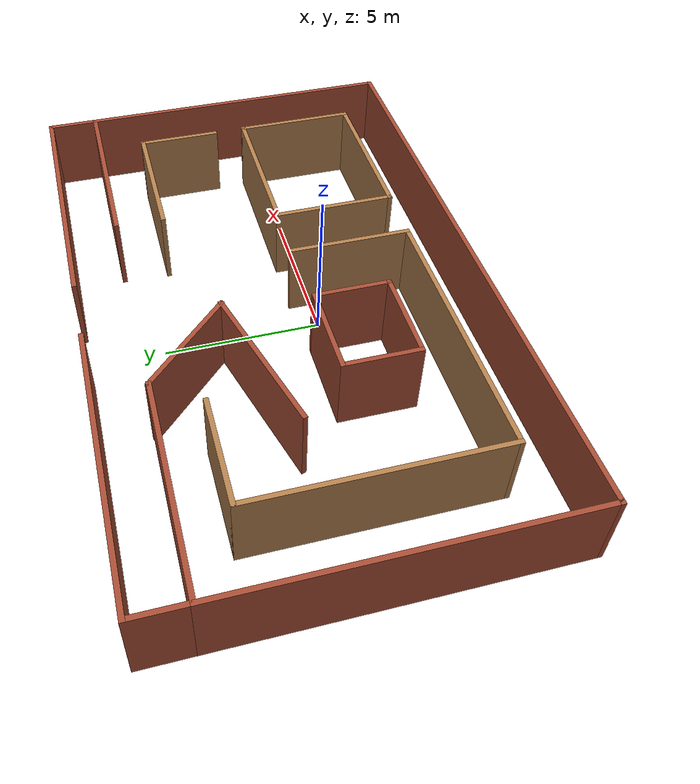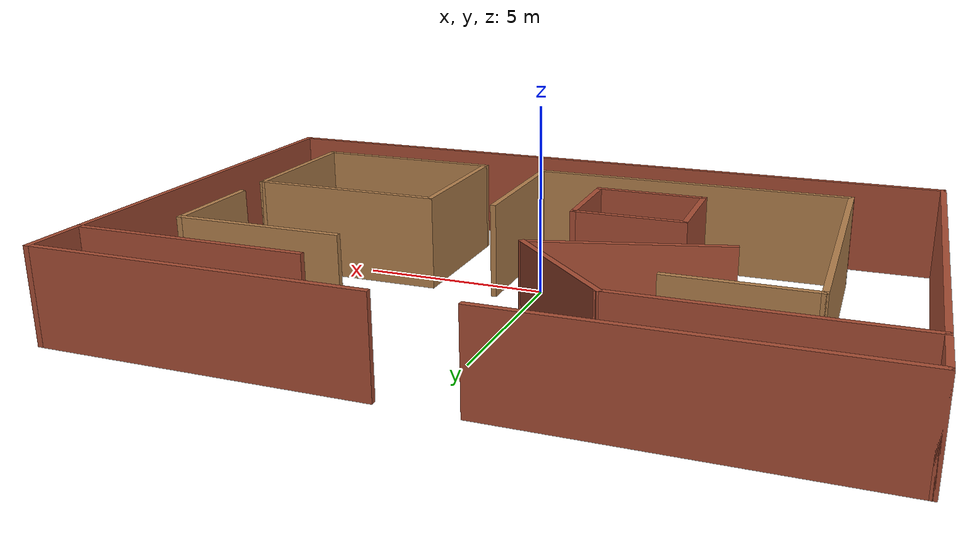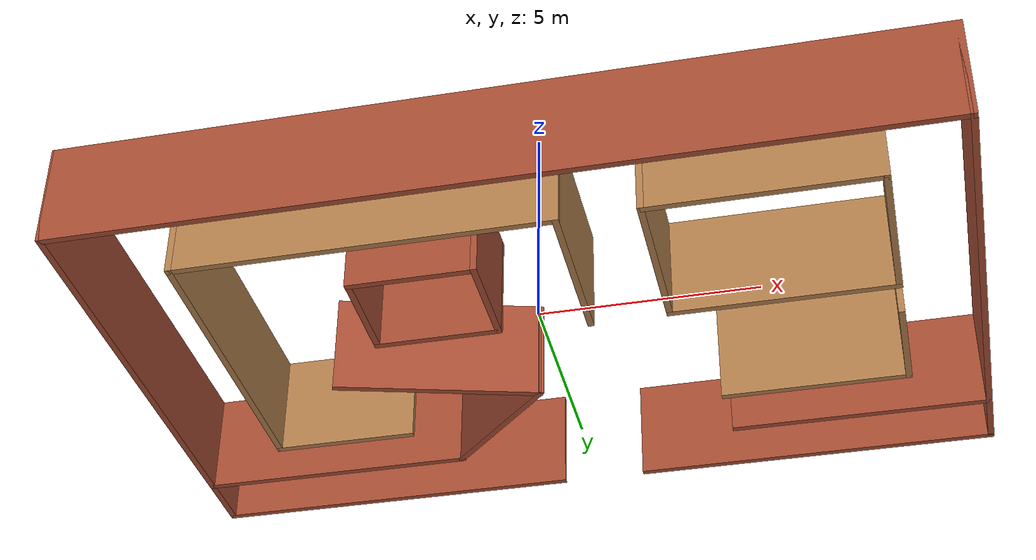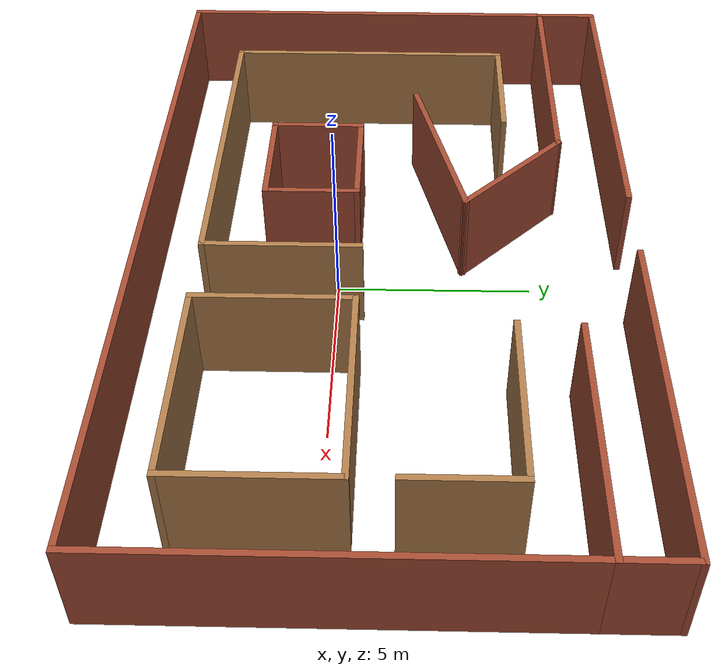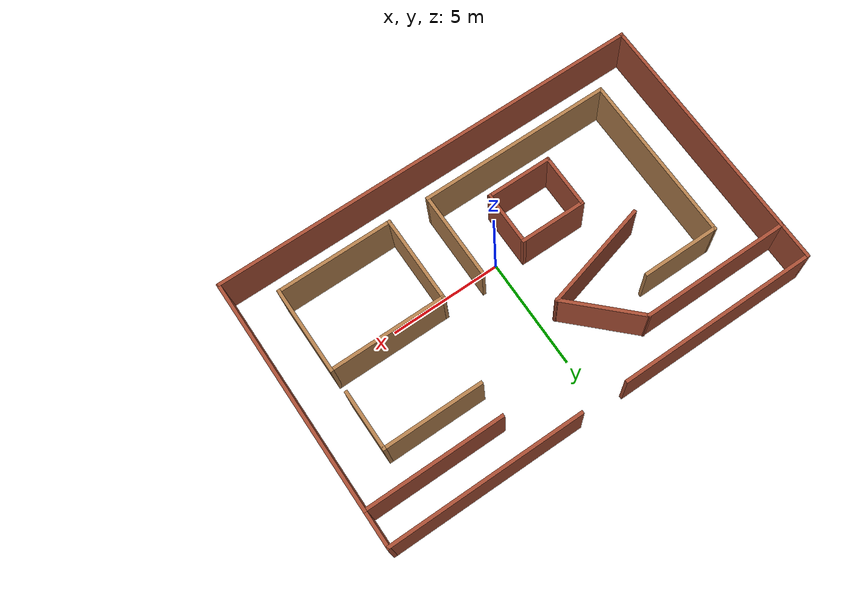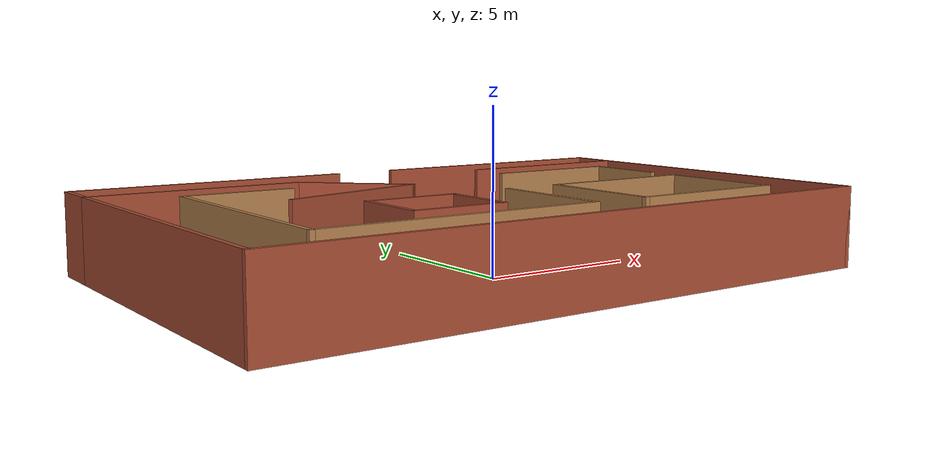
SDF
<?xml version='1.0'?>
<sdf version='1.7'>
  <model name='my_world_1'>
    <pose>-0.020782 1.29348 0 0 -0 0</pose>
    <link name='Wall_10'>
      <collision name='Wall_10_Collision'>
        <geometry>
          <box>
            <size>10.75 0.15 2.5</size>
          </box>
        </geometry>
        <pose>0 0 1.25 0 -0 0</pose>
      </collision>
      <visual name='Wall_10_Visual'>
        <pose>0 0 1.25 0 -0 0</pose>
        <geometry>
          <box>
            <size>10.75 0.15 2.5</size>
          </box>
        </geometry>
        <material>
          <script>
            <uri>file://media/materials/scripts/gazebo.material</uri>
            <name>Gazebo/Bricks</name>
          </script>
          <ambient>1 1 1 1</ambient>
        </material>
        <meta>
          <layer>0</layer>
        </meta>
      </visual>
      <pose>9.8 -0.8 0 0 -0 1.5708</pose>
    </link>
    <link name='Wall_12'>
      <collision name='Wall_12_Collision'>
        <geometry>
          <box>
            <size>6.75 0.15 2.5</size>
          </box>
        </geometry>
        <pose>0 0 1.25 0 -0 0</pose>
      </collision>
      <visual name='Wall_12_Visual'>
        <pose>0 0 1.25 0 -0 0</pose>
        <geometry>
          <box>
            <size>6.75 0.15 2.5</size>
          </box>
        </geometry>
        <material>
          <script>
            <uri>file://media/materials/scripts/gazebo.material</uri>
            <name>Gazebo/Bricks</name>
          </script>
          <ambient>1 1 1 1</ambient>
        </material>
        <meta>
          <layer>0</layer>
        </meta>
      </visual>
      <pose>-6.5 4.5 0 0 -0 0</pose>
    </link>
    <link name='Wall_14'>
      <collision name='Wall_14_Collision'>
        <geometry>
          <box>
            <size>6.25 0.15 2.5</size>
          </box>
        </geometry>
        <pose>0 0 1.25 0 -0 0</pose>
      </collision>
      <visual name='Wall_14_Visual'>
        <pose>0 0 1.25 0 -0 0</pose>
        <geometry>
          <box>
            <size>6.25 0.15 2.5</size>
          </box>
        </geometry>
        <material>
          <script>
            <uri>file://media/materials/scripts/gazebo.material</uri>
            <name>Gazebo/Bricks</name>
          </script>
          <ambient>1 1 1 1</ambient>
        </material>
        <meta>
          <layer>0</layer>
        </meta>
      </visual>
      <pose>6.75 4.5 0 0 -0 3.14159</pose>
    </link>
    <link name='Wall_16'>
      <collision name='Wall_16_Collision'>
        <geometry>
          <box>
            <size>3.75 0.15 2.5</size>
          </box>
        </geometry>
        <pose>0 0 1.25 0 -0 0</pose>
      </collision>
      <visual name='Wall_16_Visual'>
        <pose>0 0 1.25 0 -0 0</pose>
        <geometry>
          <box>
            <size>3.75 0.15 2.5</size>
          </box>
        </geometry>
        <material>
          <script>
            <uri>file://media/materials/scripts/gazebo.material</uri>
            <name>Gazebo/Bricks</name>
          </script>
          <ambient>1 1 1 1</ambient>
        </material>
        <meta>
          <layer>0</layer>
        </meta>
      </visual>
      <pose>-1.92721 3.22721 0 0 -0 -0.785398</pose>
    </link>
    <link name='Wall_17'>
      <collision name='Wall_17_Collision'>
        <geometry>
          <box>
            <size>5 0.15 2.5</size>
          </box>
        </geometry>
        <pose>0 0 1.25 0 -0 0</pose>
      </collision>
      <visual name='Wall_17_Visual'>
        <pose>0 0 1.25 0 -0 0</pose>
        <geometry>
          <box>
            <size>5 0.15 2.5</size>
          </box>
        </geometry>
        <material>
          <script>
            <uri>file://media/materials/scripts/gazebo.material</uri>
            <name>Gazebo/Bricks</name>
          </script>
          <ambient>1 1 1 1</ambient>
        </material>
        <meta>
          <layer>0</layer>
        </meta>
      </visual>
      <pose>-2.99679 1.32678 0 0 -0 -2.87979</pose>
    </link>
    <link name='Wall_19'>
      <collision name='Wall_19_Collision'>
        <geometry>
          <box>
            <size>4.5 0.15 2.5</size>
          </box>
        </geometry>
        <pose>0 0 1.25 0 -0 0</pose>
      </collision>
      <visual name='Wall_19_Visual'>
        <pose>0 0 1.25 0 -0 0</pose>
        <geometry>
          <box>
            <size>4.5 0.15 2.5</size>
          </box>
        </geometry>
        <material>
          <script>
            <uri>file://media/materials/scripts/gazebo.material</uri>
            <name>Gazebo/Wood</name>
          </script>
          <ambient>1 1 1 1</ambient>
        </material>
        <meta>
          <layer>0</layer>
        </meta>
      </visual>
      <pose>5.81402 2.99211 0 0 -0 0</pose>
    </link>
    <link name='Wall_20'>
      <collision name='Wall_20_Collision'>
        <geometry>
          <box>
            <size>2.75 0.15 2.5</size>
          </box>
        </geometry>
        <pose>0 0 1.25 0 -0 0</pose>
      </collision>
      <visual name='Wall_20_Visual'>
        <pose>0 0 1.25 0 -0 0</pose>
        <geometry>
          <box>
            <size>2.75 0.15 2.5</size>
          </box>
        </geometry>
        <material>
          <script>
            <uri>file://media/materials/scripts/gazebo.material</uri>
            <name>Gazebo/Wood</name>
          </script>
          <ambient>1 1 1 1</ambient>
        </material>
        <meta>
          <layer>0</layer>
        </meta>
      </visual>
      <pose>7.98902 1.69211 0 0 -0 -1.5708</pose>
    </link>
    <link name='Wall_22'>
      <collision name='Wall_22_Collision'>
        <geometry>
          <box>
            <size>4 0.15 2.5</size>
          </box>
        </geometry>
        <pose>0 0 1.25 0 -0 0</pose>
      </collision>
      <visual name='Wall_22_Visual'>
        <pose>0 0 1.25 0 -0 0</pose>
        <geometry>
          <box>
            <size>4 0.15 2.5</size>
          </box>
        </geometry>
        <material>
          <script>
            <uri>file://media/materials/scripts/gazebo.material</uri>
            <name>Gazebo/Wood</name>
          </script>
          <ambient>1 1 1 1</ambient>
        </material>
        <meta>
          <layer>0</layer>
        </meta>
      </visual>
      <pose>8.00145 -2.60372 0 0 -0 -1.5708</pose>
    </link>
    <link name='Wall_23'>
      <collision name='Wall_23_Collision'>
        <geometry>
          <box>
            <size>5.25 0.15 2.5</size>
          </box>
        </geometry>
        <pose>0 0 1.25 0 -0 0</pose>
      </collision>
      <visual name='Wall_23_Visual'>
        <pose>0 0 1.25 0 -0 0</pose>
        <geometry>
          <box>
            <size>5.25 0.15 2.5</size>
          </box>
        </geometry>
        <material>
          <script>
            <uri>file://media/materials/scripts/gazebo.material</uri>
            <name>Gazebo/Wood</name>
          </script>
          <ambient>1 1 1 1</ambient>
        </material>
        <meta>
          <layer>0</layer>
        </meta>
      </visual>
      <pose>5.45145 -4.52872 0 0 -0 3.14159</pose>
    </link>
    <link name='Wall_24'>
      <collision name='Wall_24_Collision'>
        <geometry>
          <box>
            <size>4 0.15 2.5</size>
          </box>
        </geometry>
        <pose>0 0 1.25 0 -0 0</pose>
      </collision>
      <visual name='Wall_24_Visual'>
        <pose>0 0 1.25 0 -0 0</pose>
        <geometry>
          <box>
            <size>4 0.15 2.5</size>
          </box>
        </geometry>
        <material>
          <script>
            <uri>file://media/materials/scripts/gazebo.material</uri>
            <name>Gazebo/Wood</name>
          </script>
          <ambient>1 1 1 1</ambient>
        </material>
        <meta>
          <layer>0</layer>
        </meta>
      </visual>
      <pose>2.90145 -2.60372 0 0 -0 1.5708</pose>
    </link>
    <link name='Wall_25'>
      <collision name='Wall_25_Collision'>
        <geometry>
          <box>
            <size>5.25 0.15 2.5</size>
          </box>
        </geometry>
        <pose>0 0 1.25 0 -0 0</pose>
      </collision>
      <visual name='Wall_25_Visual'>
        <pose>0 0 1.25 0 -0 0</pose>
        <geometry>
          <box>
            <size>5.25 0.15 2.5</size>
          </box>
        </geometry>
        <material>
          <script>
            <uri>file://media/materials/scripts/gazebo.material</uri>
            <name>Gazebo/Wood</name>
          </script>
          <ambient>1 1 1 1</ambient>
        </material>
        <meta>
          <layer>0</layer>
        </meta>
      </visual>
      <pose>5.45145 -0.67872 0 0 -0 0</pose>
    </link>
    <link name='Wall_27'>
      <collision name='Wall_27_Collision'>
        <geometry>
          <box>
            <size>4 0.15 2.5</size>
          </box>
        </geometry>
        <pose>0 0 1.25 0 -0 0</pose>
      </collision>
      <visual name='Wall_27_Visual'>
        <pose>0 0 1.25 0 -0 0</pose>
        <geometry>
          <box>
            <size>4 0.15 2.5</size>
          </box>
        </geometry>
        <material>
          <script>
            <uri>file://media/materials/scripts/gazebo.material</uri>
            <name>Gazebo/Wood</name>
          </script>
          <ambient>1 1 1 1</ambient>
        </material>
        <meta>
          <layer>0</layer>
        </meta>
      </visual>
      <pose>1.0854 -2.57712 0 0 -0 -1.5708</pose>
    </link>
    <link name='Wall_28'>
      <collision name='Wall_28_Collision'>
        <geometry>
          <box>
            <size>8.75 0.15 2.5</size>
          </box>
        </geometry>
        <pose>0 0 1.25 0 -0 0</pose>
      </collision>
      <visual name='Wall_28_Visual'>
        <pose>0 0 1.25 0 -0 0</pose>
        <geometry>
          <box>
            <size>8.75 0.15 2.5</size>
          </box>
        </geometry>
        <material>
          <script>
            <uri>file://media/materials/scripts/gazebo.material</uri>
            <name>Gazebo/Wood</name>
          </script>
          <ambient>1 1 1 1</ambient>
        </material>
        <meta>
          <layer>0</layer>
        </meta>
      </visual>
      <pose>-3.2146 -4.50212 0 0 -0 3.14159</pose>
    </link>
    <link name='Wall_29'>
      <collision name='Wall_29_Collision'>
        <geometry>
          <box>
            <size>7.75 0.15 2.5</size>
          </box>
        </geometry>
        <pose>0 0 1.25 0 -0 0</pose>
      </collision>
      <visual name='Wall_29_Visual'>
        <pose>0 0 1.25 0 -0 0</pose>
        <geometry>
          <box>
            <size>7.75 0.15 2.5</size>
          </box>
        </geometry>
        <material>
          <script>
            <uri>file://media/materials/scripts/gazebo.material</uri>
            <name>Gazebo/Wood</name>
          </script>
          <ambient>1 1 1 1</ambient>
        </material>
        <meta>
          <layer>0</layer>
        </meta>
      </visual>
      <pose>-7.5146 -0.70212 0 0 -0 1.5708</pose>
    </link>
    <link name='Wall_30'>
      <collision name='Wall_30_Collision'>
        <geometry>
          <box>
            <size>3.5 0.15 2.5</size>
          </box>
        </geometry>
        <pose>0 0 1.25 0 -0 0</pose>
      </collision>
      <visual name='Wall_30_Visual'>
        <pose>0 0 1.25 0 -0 0</pose>
        <geometry>
          <box>
            <size>3.5 0.15 2.5</size>
          </box>
        </geometry>
        <material>
          <script>
            <uri>file://media/materials/scripts/gazebo.material</uri>
            <name>Gazebo/Wood</name>
          </script>
          <ambient>1 1 1 1</ambient>
        </material>
        <meta>
          <layer>0</layer>
        </meta>
      </visual>
      <pose>-5.8396 3.09788 0 0 -0 0</pose>
    </link>
    <link name='Wall_32'>
      <collision name='Wall_32_Collision'>
        <geometry>
          <box>
            <size>2.5 0.15 2.5</size>
          </box>
        </geometry>
        <pose>0 0 1.25 0 -0 0</pose>
      </collision>
      <visual name='Wall_32_Visual'>
        <pose>0 0 1.25 0 -0 0</pose>
        <geometry>
          <box>
            <size>2.5 0.15 2.5</size>
          </box>
        </geometry>
        <material>
          <script>
            <uri>file://media/materials/scripts/gazebo.material</uri>
            <name>Gazebo/Bricks</name>
          </script>
          <ambient>1 1 1 1</ambient>
        </material>
        <meta>
          <layer>0</layer>
        </meta>
      </visual>
      <pose>-3.86224 -1.98672 0 0 -0 -1.5708</pose>
    </link>
    <link name='Wall_33'>
      <collision name='Wall_33_Collision'>
        <geometry>
          <box>
            <size>3 0.15 2.5</size>
          </box>
        </geometry>
        <pose>0 0 1.25 0 -0 0</pose>
      </collision>
      <visual name='Wall_33_Visual'>
        <pose>0 0 1.25 0 -0 0</pose>
        <geometry>
          <box>
            <size>3 0.15 2.5</size>
          </box>
        </geometry>
        <material>
          <script>
            <uri>file://media/materials/scripts/gazebo.material</uri>
            <name>Gazebo/Bricks</name>
          </script>
          <ambient>1 1 1 1</ambient>
        </material>
        <meta>
          <layer>0</layer>
        </meta>
      </visual>
      <pose>-2.43723 -3.16172 0 0 -0 0</pose>
    </link>
    <link name='Wall_34'>
      <collision name='Wall_34_Collision'>
        <geometry>
          <box>
            <size>2.5 0.15 2.5</size>
          </box>
        </geometry>
        <pose>0 0 1.25 0 -0 0</pose>
      </collision>
      <visual name='Wall_34_Visual'>
        <pose>0 0 1.25 0 -0 0</pose>
        <geometry>
          <box>
            <size>2.5 0.15 2.5</size>
          </box>
        </geometry>
        <material>
          <script>
            <uri>file://media/materials/scripts/gazebo.material</uri>
            <name>Gazebo/Bricks</name>
          </script>
          <ambient>1 1 1 1</ambient>
        </material>
        <meta>
          <layer>0</layer>
        </meta>
      </visual>
      <pose>-1.01223 -1.98672 0 0 -0 1.5708</pose>
    </link>
    <link name='Wall_35'>
      <collision name='Wall_35_Collision'>
        <geometry>
          <box>
            <size>3 0.15 2.5</size>
          </box>
        </geometry>
        <pose>0 0 1.25 0 -0 0</pose>
      </collision>
      <visual name='Wall_35_Visual'>
        <pose>0 0 1.25 0 -0 0</pose>
        <geometry>
          <box>
            <size>3 0.15 2.5</size>
          </box>
        </geometry>
        <material>
          <script>
            <uri>file://media/materials/scripts/gazebo.material</uri>
            <name>Gazebo/Bricks</name>
          </script>
          <ambient>1 1 1 1</ambient>
        </material>
        <meta>
          <layer>0</layer>
        </meta>
      </visual>
      <pose>-2.43723 -0.811721 0 0 -0 3.14159</pose>
    </link>
    <link name='Wall_37'>
      <collision name='Wall_37_Collision'>
        <geometry>
          <box>
            <size>1.75 0.15 2.5</size>
          </box>
        </geometry>
        <pose>0 0 1.25 0 -0 0</pose>
      </collision>
      <visual name='Wall_37_Visual'>
        <pose>0 0 1.25 0 -0 0</pose>
        <geometry>
          <box>
            <size>1.75 0.15 2.5</size>
          </box>
        </geometry>
        <material>
          <script>
            <uri>file://media/materials/scripts/gazebo.material</uri>
            <name>Gazebo/Bricks</name>
          </script>
          <ambient>1 1 1 1</ambient>
        </material>
        <meta>
          <layer>0</layer>
        </meta>
      </visual>
      <pose>-9.8 5.3 0 0 -0 1.5708</pose>
    </link>
    <link name='Wall_38'>
      <collision name='Wall_38_Collision'>
        <geometry>
          <box>
            <size>9 0.15 2.5</size>
          </box>
        </geometry>
        <pose>0 0 1.25 0 -0 0</pose>
      </collision>
      <visual name='Wall_38_Visual'>
        <pose>0 0 1.25 0 -0 0</pose>
        <geometry>
          <box>
            <size>9 0.15 2.5</size>
          </box>
        </geometry>
        <material>
          <script>
            <uri>file://media/materials/scripts/gazebo.material</uri>
            <name>Gazebo/Bricks</name>
          </script>
          <ambient>1 1 1 1</ambient>
        </material>
        <meta>
          <layer>0</layer>
        </meta>
      </visual>
      <pose>-5.375 6.1 0 0 -0 0</pose>
    </link>
    <link name='Wall_41'>
      <collision name='Wall_41_Collision'>
        <geometry>
          <box>
            <size>1.75 0.15 2.5</size>
          </box>
        </geometry>
        <pose>0 0 1.25 0 -0 0</pose>
      </collision>
      <visual name='Wall_41_Visual'>
        <pose>0 0 1.25 0 -0 0</pose>
        <geometry>
          <box>
            <size>1.75 0.15 2.5</size>
          </box>
        </geometry>
        <material>
          <script>
            <uri>file://media/materials/scripts/gazebo.material</uri>
            <name>Gazebo/Bricks</name>
          </script>
          <ambient>1 1 1 1</ambient>
        </material>
        <meta>
          <layer>0</layer>
        </meta>
      </visual>
      <pose>9.8 5.3 0 0 -0 1.5708</pose>
    </link>
    <link name='Wall_42'>
      <collision name='Wall_42_Collision'>
        <geometry>
          <box>
            <size>8.75 0.15 2.5</size>
          </box>
        </geometry>
        <pose>0 0 1.25 0 -0 0</pose>
      </collision>
      <visual name='Wall_42_Visual'>
        <pose>0 0 1.25 0 -0 0</pose>
        <geometry>
          <box>
            <size>8.75 0.15 2.5</size>
          </box>
        </geometry>
        <material>
          <script>
            <uri>file://media/materials/scripts/gazebo.material</uri>
            <name>Gazebo/Bricks</name>
          </script>
          <ambient>1 1 1 1</ambient>
        </material>
        <meta>
          <layer>0</layer>
        </meta>
      </visual>
      <pose>5.5 6.1 0 0 -0 3.14159</pose>
    </link>
    <link name='Wall_6'>
      <collision name='Wall_6_Collision'>
        <geometry>
          <box>
            <size>10.75 0.15 2.5</size>
          </box>
        </geometry>
        <pose>0 0 1.25 0 -0 0</pose>
      </collision>
      <visual name='Wall_6_Visual'>
        <pose>0 0 1.25 0 -0 0</pose>
        <geometry>
          <box>
            <size>10.75 0.15 2.5</size>
          </box>
        </geometry>
        <material>
          <script>
            <uri>file://media/materials/scripts/gazebo.material</uri>
            <name>Gazebo/Bricks</name>
          </script>
          <ambient>1 1 1 1</ambient>
        </material>
        <meta>
          <layer>0</layer>
        </meta>
      </visual>
      <pose>-9.8 -0.8 0 0 -0 1.5708</pose>
    </link>
    <link name='Wall_9'>
      <collision name='Wall_9_Collision'>
        <geometry>
          <box>
            <size>19.75 0.15 2.5</size>
          </box>
        </geometry>
        <pose>0 0 1.25 0 -0 0</pose>
      </collision>
      <visual name='Wall_9_Visual'>
        <pose>0 0 1.25 0 -0 0</pose>
        <geometry>
          <box>
            <size>19.75 0.15 2.5</size>
          </box>
        </geometry>
        <material>
          <script>
            <uri>file://media/materials/scripts/gazebo.material</uri>
            <name>Gazebo/Bricks</name>
          </script>
          <ambient>1 1 1 1</ambient>
        </material>
        <meta>
          <layer>0</layer>
        </meta>
      </visual>
      <pose>0 -6.1 0 0 -0 0</pose>
    </link>
    <static>1</static>
  </model>
</sdf>
